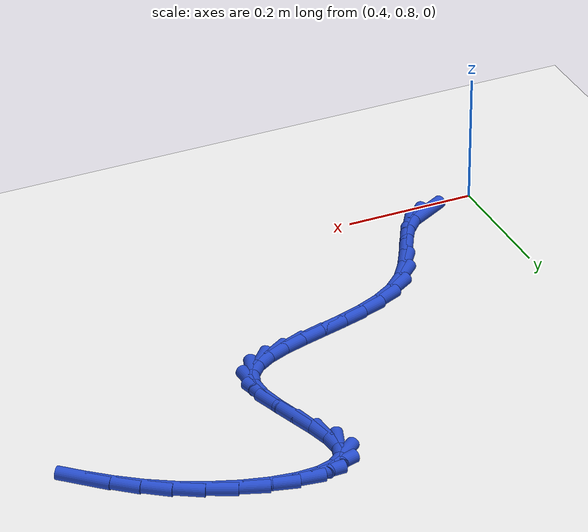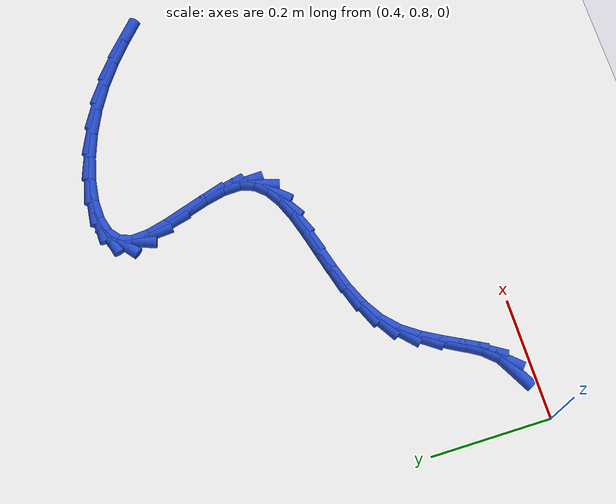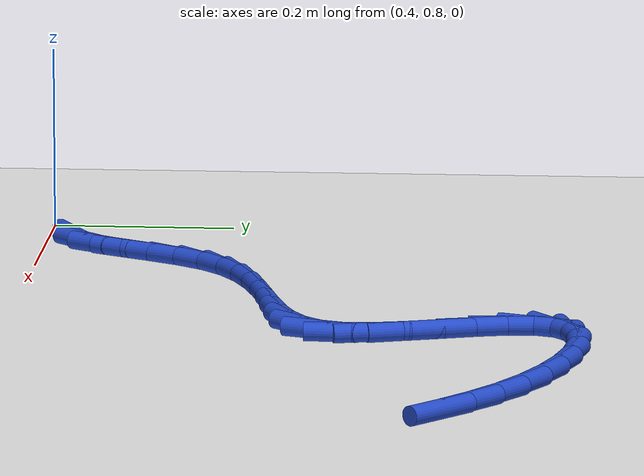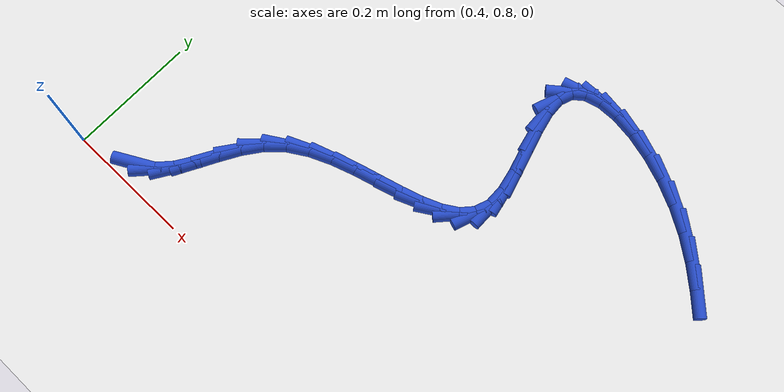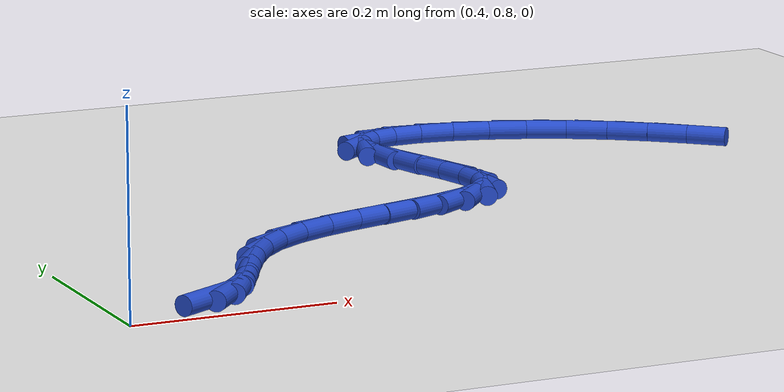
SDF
<sdf version="1.6">
 <world name="default">
  <model name="ground_plane">
   <static>1</static>
   <link name="link">
    <collision name="collision">
     <geometry><plane><normal>0 0 1</normal><size>100 100</size></plane></geometry>
     <surface><friction><ode><mu>100</mu><mu2>50</mu2></ode></friction></surface>
    </collision>
    <visual name="visual">
     <cast_shadows>0</cast_shadows>
     <geometry><plane><normal>0 0 1</normal><size>100 100</size></plane></geometry>
     <material>
      <script><uri>file://media/materials/scripts/gazebo.material</uri><name>Gazebo/WhiteGlow</name></script>
     </material>
    </visual>
   </link>
  </model>
  <model name="line">
   <link name="link_32">
    <pose>0.4903143958982589 0.8309143824381386 0.01 0 1.57 0.4996409974126413</pose>
    <collision name="collision">
     <geometry><cylinder><radius>0.01</radius><length>0.08</length></cylinder></geometry>
    </collision>
    <visual name="visual">
     <material>
      <script><name>Gazebo/Blue</name><uri>file://media/materials/scripts/gazebo.material</uri></script>
     </material>
     <geometry><cylinder><radius>0.01</radius><length>0.08</length></cylinder></geometry>
    </visual>
   </link>
   <link name="link_33">
    <pose>0.5147231740895354 0.8442375829235944 0.01 0 1.57 0.832716780601831</pose>
    <collision name="collision">
     <geometry><cylinder><radius>0.01</radius><length>0.08</length></cylinder></geometry>
    </collision>
    <visual name="visual">
     <material>
      <script><name>Gazebo/Blue</name><uri>file://media/materials/scripts/gazebo.material</uri></script>
     </material>
     <geometry><cylinder><radius>0.01</radius><length>0.08</length></cylinder></geometry>
    </visual>
   </link>
   <link name="link_34">
    <pose>0.5344361363996283 0.8659103223089525 0.01 0 1.57 1.0155939138871395</pose>
    <collision name="collision">
     <geometry><cylinder><radius>0.01</radius><length>0.08</length></cylinder></geometry>
    </collision>
    <visual name="visual">
     <material>
      <script><name>Gazebo/Blue</name><uri>file://media/materials/scripts/gazebo.material</uri></script>
     </material>
     <geometry><cylinder><radius>0.01</radius><length>0.08</length></cylinder></geometry>
    </visual>
   </link>
   <link name="link_35">
    <pose>0.5514277539226377 0.8933035132023726 0.01 0 1.57 1.081069436491082</pose>
    <collision name="collision">
     <geometry><cylinder><radius>0.01</radius><length>0.08</length></cylinder></geometry>
    </collision>
    <visual name="visual">
     <material>
      <script><name>Gazebo/Blue</name><uri>file://media/materials/scripts/gazebo.material</uri></script>
     </material>
     <geometry><cylinder><radius>0.01</radius><length>0.08</length></cylinder></geometry>
    </visual>
   </link>
   <link name="link_36">
    <pose>0.5676750274360902 0.9237840646491008 0.01 0 1.57 1.0564667483142345</pose>
    <collision name="collision">
     <geometry><cylinder><radius>0.01</radius><length>0.08</length></cylinder></geometry>
    </collision>
    <visual name="visual">
     <material>
      <script><name>Gazebo/Blue</name><uri>file://media/materials/scripts/gazebo.material</uri></script>
     </material>
     <geometry><cylinder><radius>0.01</radius><length>0.08</length></cylinder></geometry>
    </visual>
   </link>
   <link name="link_37">
    <pose>0.5851549577175131 0.9547188856943832 0.01 0 1.57 0.947110756154163</pose>
    <collision name="collision">
     <geometry><cylinder><radius>0.01</radius><length>0.08</length></cylinder></geometry>
    </collision>
    <visual name="visual">
     <material>
      <script><name>Gazebo/Blue</name><uri>file://media/materials/scripts/gazebo.material</uri></script>
     </material>
     <geometry><cylinder><radius>0.01</radius><length>0.08</length></cylinder></geometry>
    </visual>
   </link>
   <link name="link_38">
    <pose>0.6058445455444328 0.9834748853834654 0.01 0 1.57 0.7520872696079361</pose>
    <collision name="collision">
     <geometry><cylinder><radius>0.01</radius><length>0.08</length></cylinder></geometry>
    </collision>
    <visual name="visual">
     <material>
      <script><name>Gazebo/Blue</name><uri>file://media/materials/scripts/gazebo.material</uri></script>
     </material>
     <geometry><cylinder><radius>0.01</radius><length>0.08</length></cylinder></geometry>
    </visual>
   </link>
   <link name="link_39">
    <pose>0.6315903774653531 1.0075601835910943 0.01 0 1.57 0.5527249260086872</pose>
    <collision name="collision">
     <geometry><cylinder><radius>0.01</radius><length>0.08</length></cylinder></geometry>
    </collision>
    <visual name="visual">
     <material>
      <script><name>Gazebo/Blue</name><uri>file://media/materials/scripts/gazebo.material</uri></script>
     </material>
     <geometry><cylinder><radius>0.01</radius><length>0.08</length></cylinder></geometry>
    </visual>
   </link>
   <link name="link_40">
    <pose>0.66234631790809 1.0265323150655166 0.01 0 1.57 0.411415885465258</pose>
    <collision name="collision">
     <geometry><cylinder><radius>0.01</radius><length>0.08</length></cylinder></geometry>
    </collision>
    <visual name="visual">
     <material>
      <script><name>Gazebo/Blue</name><uri>file://media/materials/scripts/gazebo.material</uri></script>
     </material>
     <geometry><cylinder><radius>0.01</radius><length>0.08</length></cylinder></geometry>
    </visual>
   </link>
   <link name="link_41">
    <pose>0.6966386412262948 1.041494590503429 0.01 0 1.57 0.3214297564279859</pose>
    <collision name="collision">
     <geometry><cylinder><radius>0.01</radius><length>0.08</length></cylinder></geometry>
    </collision>
    <visual name="visual">
     <material>
      <script><name>Gazebo/Blue</name><uri>file://media/materials/scripts/gazebo.material</uri></script>
     </material>
     <geometry><cylinder><radius>0.01</radius><length>0.08</length></cylinder></geometry>
    </visual>
   </link>
   <link name="link_42">
    <pose>0.7329585596513939 1.0535882854110454 0.01 0 1.57 0.2743057573226183</pose>
    <collision name="collision">
     <geometry><cylinder><radius>0.01</radius><length>0.08</length></cylinder></geometry>
    </collision>
    <visual name="visual">
     <material>
      <script><name>Gazebo/Blue</name><uri>file://media/materials/scripts/gazebo.material</uri></script>
     </material>
     <geometry><cylinder><radius>0.01</radius><length>0.08</length></cylinder></geometry>
    </visual>
   </link>
   <link name="link_43">
    <pose>0.7697972854148135 1.063954675294581 0.01 0 1.57 0.26634109811476325</pose>
    <collision name="collision">
     <geometry><cylinder><radius>0.01</radius><length>0.08</length></cylinder></geometry>
    </collision>
    <visual name="visual">
     <material>
      <script><name>Gazebo/Blue</name><uri>file://media/materials/scripts/gazebo.material</uri></script>
     </material>
     <geometry><cylinder><radius>0.01</radius><length>0.08</length></cylinder></geometry>
    </visual>
   </link>
   <link name="link_44">
    <pose>0.80564603074798 1.0737350356602504 0.01 0 1.57 0.30052670313236807</pose>
    <collision name="collision">
     <geometry><cylinder><radius>0.01</radius><length>0.08</length></cylinder></geometry>
    </collision>
    <visual name="visual">
     <material>
      <script><name>Gazebo/Blue</name><uri>file://media/materials/scripts/gazebo.material</uri></script>
     </material>
     <geometry><cylinder><radius>0.01</radius><length>0.08</length></cylinder></geometry>
    </visual>
   </link>
   <link name="link_45">
    <pose>0.8389960078823196 1.0840706420142678 0.01 0 1.57 0.38914785512775685</pose>
    <collision name="collision">
     <geometry><cylinder><radius>0.01</radius><length>0.08</length></cylinder></geometry>
    </collision>
    <visual name="visual">
     <material>
      <script><name>Gazebo/Blue</name><uri>file://media/materials/scripts/gazebo.material</uri></script>
     </material>
     <geometry><cylinder><radius>0.01</radius><length>0.08</length></cylinder></geometry>
    </visual>
   </link>
   <link name="link_46">
    <pose>0.8683384290492588 1.0961027698628483 0.01 0 1.57 0.5579539746519782</pose>
    <collision name="collision">
     <geometry><cylinder><radius>0.01</radius><length>0.08</length></cylinder></geometry>
    </collision>
    <visual name="visual">
     <material>
      <script><name>Gazebo/Blue</name><uri>file://media/materials/scripts/gazebo.material</uri></script>
     </material>
     <geometry><cylinder><radius>0.01</radius><length>0.08</length></cylinder></geometry>
    </visual>
   </link>
   <link name="link_47">
    <pose>0.8921645064802244 1.1109726947122063 0.01 0 1.57 0.8427840264961198</pose>
    <collision name="collision">
     <geometry><cylinder><radius>0.01</radius><length>0.08</length></cylinder></geometry>
    </collision>
    <visual name="visual">
     <material>
      <script><name>Gazebo/Blue</name><uri>file://media/materials/scripts/gazebo.material</uri></script>
     </material>
     <geometry><cylinder><radius>0.01</radius><length>0.08</length></cylinder></geometry>
    </visual>
   </link>
   <link name="link_48">
    <pose>0.9089654524066428 1.1298216920685566 0.01 0 1.57 1.2386689034204432</pose>
    <collision name="collision">
     <geometry><cylinder><radius>0.01</radius><length>0.08</length></cylinder></geometry>
    </collision>
    <visual name="visual">
     <material>
      <script><name>Gazebo/Blue</name><uri>file://media/materials/scripts/gazebo.material</uri></script>
     </material>
     <geometry><cylinder><radius>0.01</radius><length>0.08</length></cylinder></geometry>
    </visual>
   </link>
   <link name="link_49">
    <pose>0.9172325496287662 1.1537909885401658 0.01 0 1.57 -1.5411900693138265</pose>
    <collision name="collision">
     <geometry><cylinder><radius>0.01</radius><length>0.08</length></cylinder></geometry>
    </collision>
    <visual name="visual">
     <material>
      <script><name>Gazebo/Blue</name><uri>file://media/materials/scripts/gazebo.material</uri></script>
     </material>
     <geometry><cylinder><radius>0.01</radius><length>0.08</length></cylinder></geometry>
    </visual>
   </link>
   <link name="link_50">
    <pose>0.9163557067880118 1.1833991425996107 0.01 0 1.57 -1.351472387062178</pose>
    <collision name="collision">
     <geometry><cylinder><radius>0.01</radius><length>0.08</length></cylinder></geometry>
    </collision>
    <visual name="visual">
     <material>
      <script><name>Gazebo/Blue</name><uri>file://media/materials/scripts/gazebo.material</uri></script>
     </material>
     <geometry><cylinder><radius>0.01</radius><length>0.08</length></cylinder></geometry>
    </visual>
   </link>
   <link name="link_51">
    <pose>0.9088688264460544 1.216986203329609 0.01 0 1.57 -1.2729591687332182</pose>
    <collision name="collision">
     <geometry><cylinder><radius>0.01</radius><length>0.08</length></cylinder></geometry>
    </collision>
    <visual name="visual">
     <material>
      <script><name>Gazebo/Blue</name><uri>file://media/materials/scripts/gazebo.material</uri></script>
     </material>
     <geometry><cylinder><radius>0.01</radius><length>0.08</length></cylinder></geometry>
    </visual>
   </link>
   <link name="link_52">
    <pose>0.897992991826425 1.252416064463231 0.01 0 1.57 -1.2662650251652474</pose>
    <collision name="collision">
     <geometry><cylinder><radius>0.01</radius><length>0.08</length></cylinder></geometry>
    </collision>
    <visual name="visual">
     <material>
      <script><name>Gazebo/Blue</name><uri>file://media/materials/scripts/gazebo.material</uri></script>
     </material>
     <geometry><cylinder><radius>0.01</radius><length>0.08</length></cylinder></geometry>
    </visual>
   </link>
   <link name="link_53">
    <pose>0.886949286152656 1.287552619733549 0.01 0 1.57 -1.3311855283755998</pose>
    <collision name="collision">
     <geometry><cylinder><radius>0.01</radius><length>0.08</length></cylinder></geometry>
    </collision>
    <visual name="visual">
     <material>
      <script><name>Gazebo/Blue</name><uri>file://media/materials/scripts/gazebo.material</uri></script>
     </material>
     <geometry><cylinder><radius>0.01</radius><length>0.08</length></cylinder></geometry>
    </visual>
   </link>
   <link name="link_54">
    <pose>0.8789587926482786 1.3202597628736326 0.01 0 1.57 -1.5098874312382555</pose>
    <collision name="collision">
     <geometry><cylinder><radius>0.01</radius><length>0.08</length></cylinder></geometry>
    </collision>
    <visual name="visual">
     <material>
      <script><name>Gazebo/Blue</name><uri>file://media/materials/scripts/gazebo.material</uri></script>
     </material>
     <geometry><cylinder><radius>0.01</radius><length>0.08</length></cylinder></geometry>
    </visual>
   </link>
   <link name="link_55">
    <pose>0.8772425945368248 1.348401387616554 0.01 0 1.57 1.2292846988651</pose>
    <collision name="collision">
     <geometry><cylinder><radius>0.01</radius><length>0.08</length></cylinder></geometry>
    </collision>
    <visual name="visual">
     <material>
      <script><name>Gazebo/Blue</name><uri>file://media/materials/scripts/gazebo.material</uri></script>
     </material>
     <geometry><cylinder><radius>0.01</radius><length>0.08</length></cylinder></geometry>
    </visual>
   </link>
   <link name="link_56">
    <pose>0.884888430947695 1.3699123802993478 0.01 0 1.57 0.6783259774967093</pose>
    <collision name="collision">
     <geometry><cylinder><radius>0.01</radius><length>0.08</length></cylinder></geometry>
    </collision>
    <visual name="visual">
     <material>
      <script><name>Gazebo/Blue</name><uri>file://media/materials/scripts/gazebo.material</uri></script>
     </material>
     <geometry><cylinder><radius>0.01</radius><length>0.08</length></cylinder></geometry>
    </visual>
   </link>
   <link name="link_57">
    <pose>0.9024586446941425 1.384072152201771 0.01 0 1.57 0.27535991538969545</pose>
    <collision name="collision">
     <geometry><cylinder><radius>0.01</radius><length>0.08</length></cylinder></geometry>
    </collision>
    <visual name="visual">
     <material>
      <script><name>Gazebo/Blue</name><uri>file://media/materials/scripts/gazebo.material</uri></script>
     </material>
     <geometry><cylinder><radius>0.01</radius><length>0.08</length></cylinder></geometry>
    </visual>
   </link>
   <link name="link_58">
    <pose>0.9282587639608674 1.3913616462363747 0.01 0 1.57 0.029209063441881608</pose>
    <collision name="collision">
     <geometry><cylinder><radius>0.01</radius><length>0.08</length></cylinder></geometry>
    </collision>
    <visual name="visual">
     <material>
      <script><name>Gazebo/Blue</name><uri>file://media/materials/scripts/gazebo.material</uri></script>
     </material>
     <geometry><cylinder><radius>0.01</radius><length>0.08</length></cylinder></geometry>
    </visual>
   </link>
   <link name="link_59">
    <pose>0.9605149021702744 1.3923040858591809 0.01 0 1.57 -0.13138865890692586</pose>
    <collision name="collision">
     <geometry><cylinder><radius>0.01</radius><length>0.08</length></cylinder></geometry>
    </collision>
    <visual name="visual">
     <material>
      <script><name>Gazebo/Blue</name><uri>file://media/materials/scripts/gazebo.material</uri></script>
     </material>
     <geometry><cylinder><radius>0.01</radius><length>0.08</length></cylinder></geometry>
    </visual>
   </link>
   <link name="link_60">
    <pose>0.9974531727447675 1.387422694526211 0.01 0 1.57 -0.2501769947388208</pose>
    <collision name="collision">
     <geometry><cylinder><radius>0.01</radius><length>0.08</length></cylinder></geometry>
    </collision>
    <visual name="visual">
     <material>
      <script><name>Gazebo/Blue</name><uri>file://media/materials/scripts/gazebo.material</uri></script>
     </material>
     <geometry><cylinder><radius>0.01</radius><length>0.08</length></cylinder></geometry>
    </visual>
   </link>
   <link name="link_61">
    <pose>1.037299689106752 1.3772406956934875 0.01 0 1.57 -0.35000421066758286</pose>
    <collision name="collision">
     <geometry><cylinder><radius>0.01</radius><length>0.08</length></cylinder></geometry>
    </collision>
    <visual name="visual">
     <material>
      <script><name>Gazebo/Blue</name><uri>file://media/materials/scripts/gazebo.material</uri></script>
     </material>
     <geometry><cylinder><radius>0.01</radius><length>0.08</length></cylinder></geometry>
    </visual>
   </link>
   <link name="link_62">
    <pose>1.0782805646786315 1.3622813128170315 0.01 0 1.57 -0.4444874581930824</pose>
    <collision name="collision">
     <geometry><cylinder><radius>0.01</radius><length>0.08</length></cylinder></geometry>
    </collision>
    <visual name="visual">
     <material>
      <script><name>Gazebo/Blue</name><uri>file://media/materials/scripts/gazebo.material</uri></script>
     </material>
     <geometry><cylinder><radius>0.01</radius><length>0.08</length></cylinder></geometry>
    </visual>
   </link>
   <link name="link_63">
    <pose>1.1186219128828112 1.3430677693528654 0.01 0 1.57 -0.5431550507498765</pose>
    <collision name="collision">
     <geometry><cylinder><radius>0.01</radius><length>0.08</length></cylinder></geometry>
    </collision>
    <visual name="visual">
     <material>
      <script><name>Gazebo/Blue</name><uri>file://media/materials/scripts/gazebo.material</uri></script>
     </material>
     <geometry><cylinder><radius>0.01</radius><length>0.08</length></cylinder></geometry>
    </visual>
   </link>
   <link name="link_64">
    <pose>1.156603375377673 1.320137354911235 0.01 0 1.57 -0.6361913903047263</pose>
    <collision name="collision">
     <geometry><cylinder><radius>0.01</radius><length>0.08</length></cylinder></geometry>
    </collision>
    <visual name="visual">
     <material>
      <script><name>Gazebo/Blue</name><uri>file://media/materials/scripts/gazebo.material</uri></script>
     </material>
     <geometry><cylinder><radius>0.01</radius><length>0.08</length></cylinder></geometry>
    </visual>
   </link>
   <link name="link_65">
    <pose>1.191572255167857 1.29430791923819 0.01 0 1.57 -0.708213836120784</pose>
    <collision name="collision">
     <geometry><cylinder><radius>0.01</radius><length>0.08</length></cylinder></geometry>
    </collision>
    <visual name="visual">
     <material>
      <script><name>Gazebo/Blue</name><uri>file://media/materials/scripts/gazebo.material</uri></script>
     </material>
     <geometry><cylinder><radius>0.01</radius><length>0.08</length></cylinder></geometry>
    </visual>
   </link>
   <link name="link_66">
    <pose>1.2238598890093935 1.266655896549373 0.01 0 1.57 -0.7582304636707654</pose>
    <collision name="collision">
     <geometry><cylinder><radius>0.01</radius><length>0.08</length></cylinder></geometry>
    </collision>
    <visual name="visual">
     <material>
      <script><name>Gazebo/Blue</name><uri>file://media/materials/scripts/gazebo.material</uri></script>
     </material>
     <geometry><cylinder><radius>0.01</radius><length>0.08</length></cylinder></geometry>
    </visual>
   </link>
  </model>
 </world>
</sdf>
